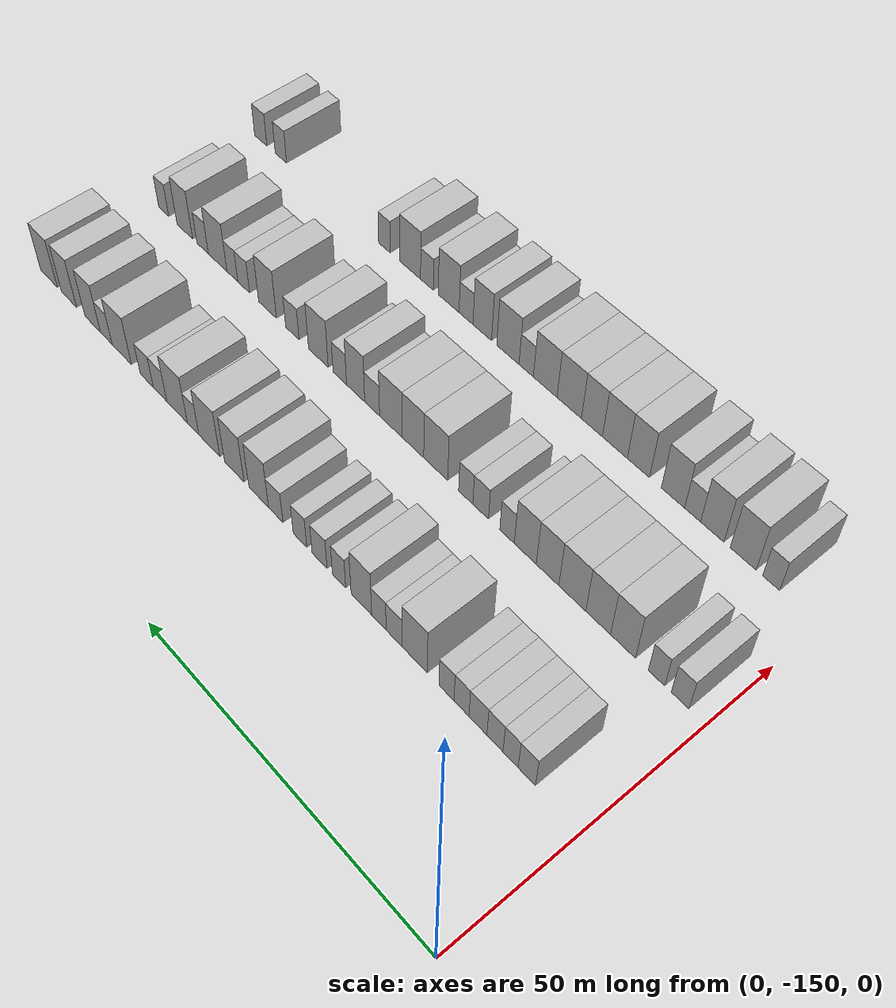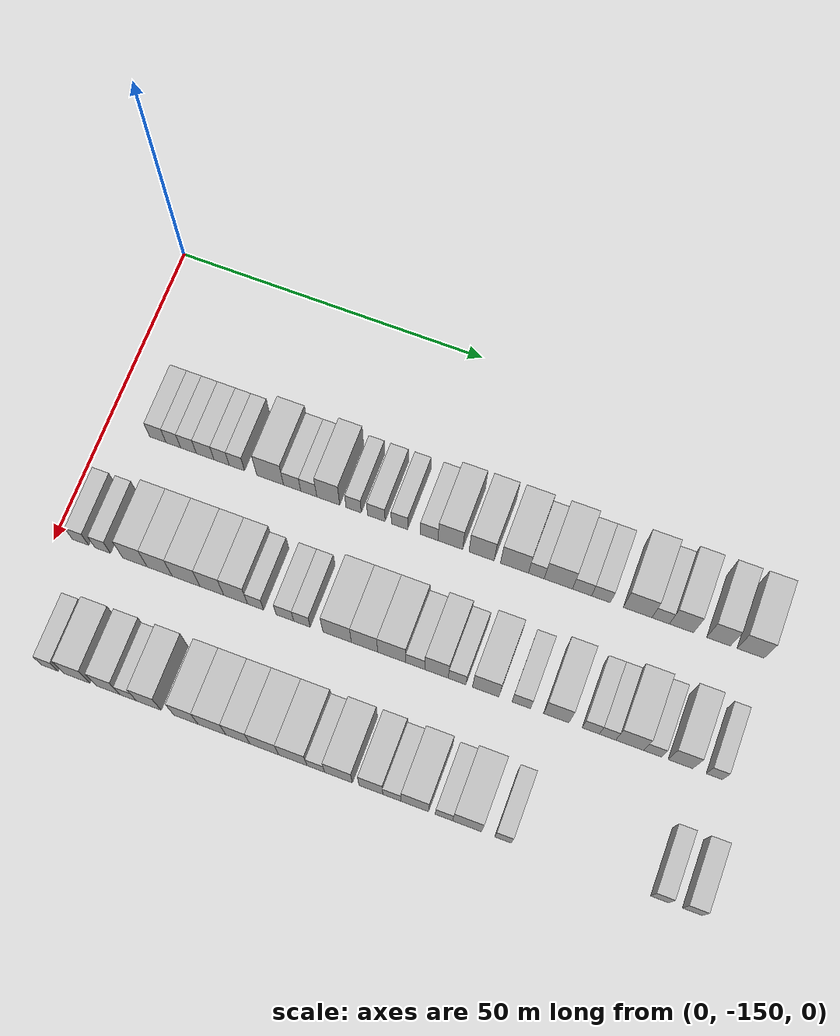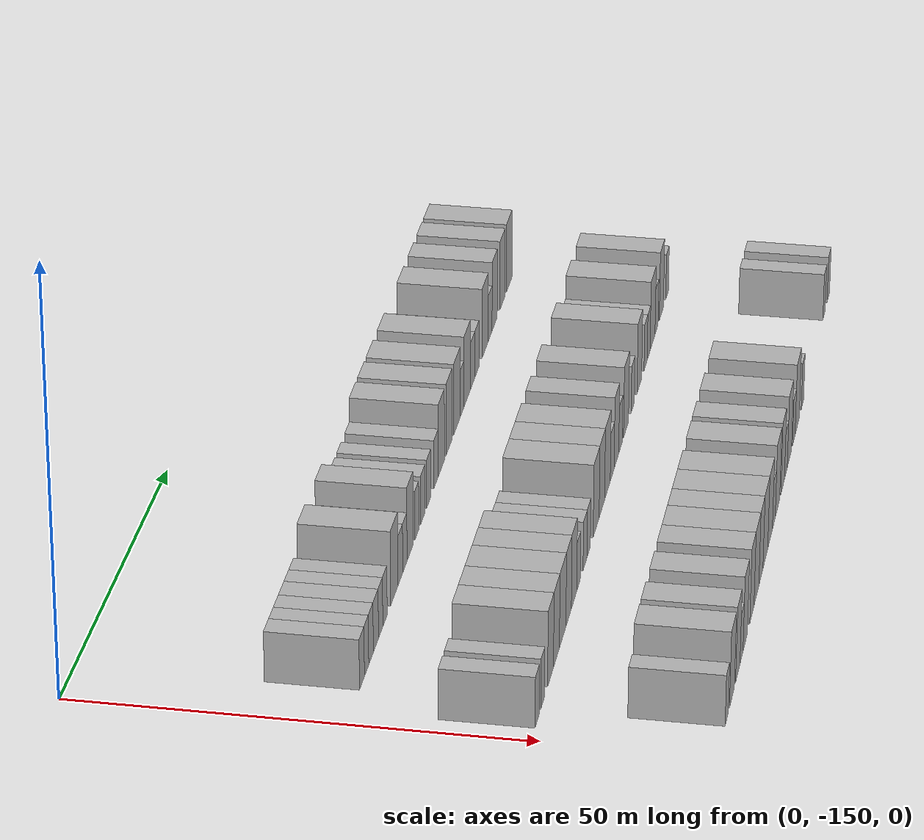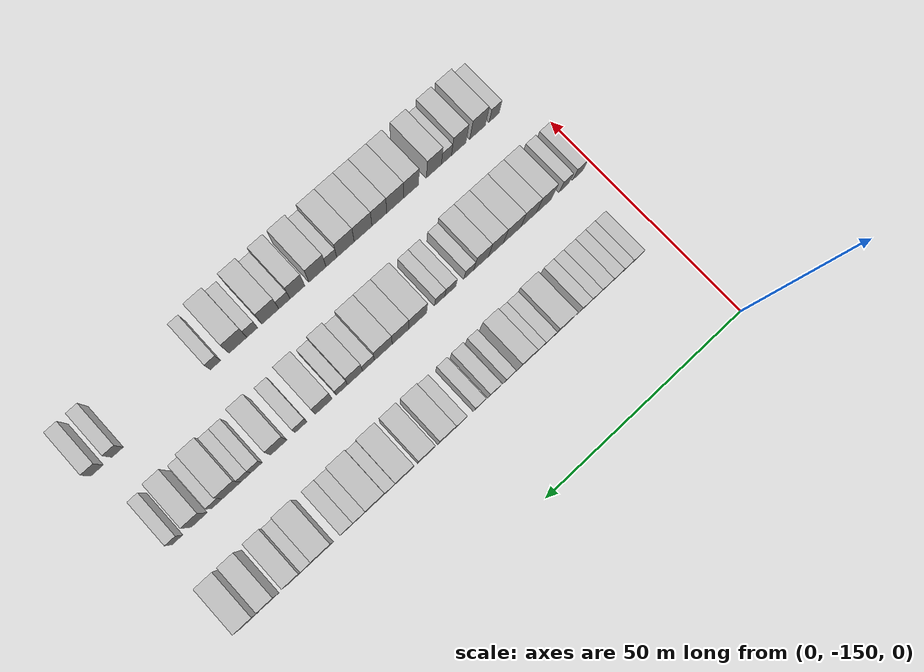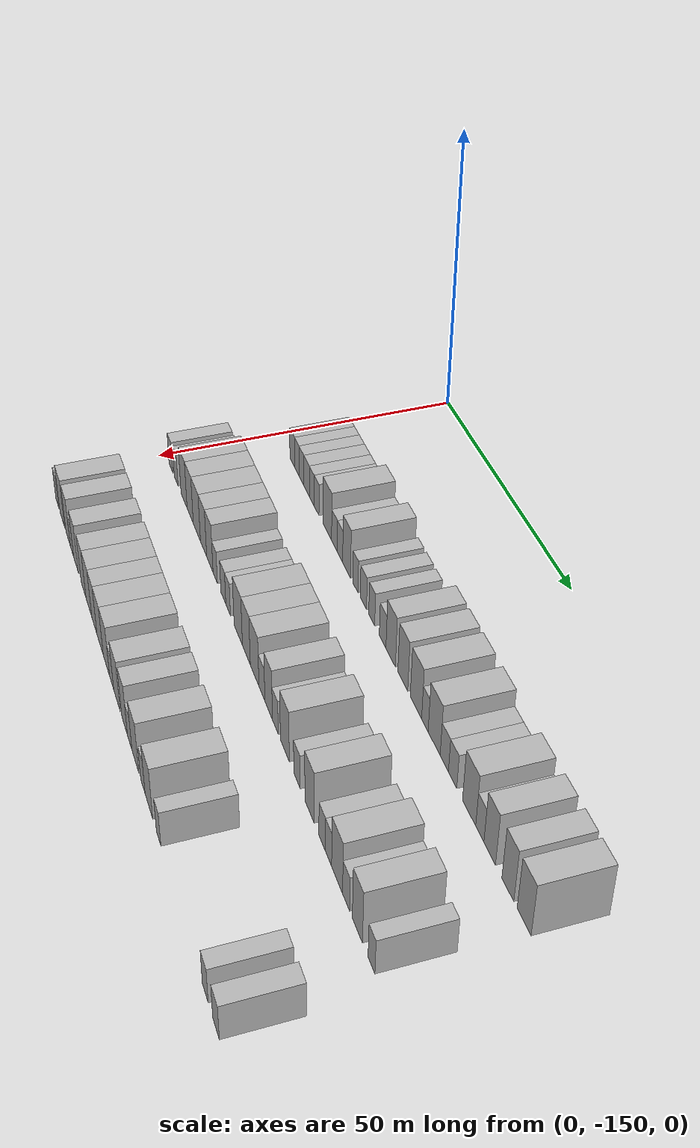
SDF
<sdf version="1.6">
 <world name="default">
  <model name="building_25">
   <static>1</static>
   <pose>25.0000 -141.7247 0 0.000000 0.000000 0.000000</pose>
   <link name="link">
    <pose>0 0 3.00 0 0 0</pose>
    <collision name="collision"><geometry><box><size>10.0000 2.7232 6.0000</size></box></geometry></collision>
    <visual name="visual">
     <cast_shadows>0</cast_shadows>
     <geometry><box><size>10.0000 2.7232 6.0000</size></box></geometry>
     <material>
      <script>
       <uri>model://HANNAS_wall/materials/scripts</uri>
       <uri>model://HANNAS_wall/materials/textures</uri>
       <name>vrc/HANNAS_wall</name>
      </script>
     </material>
    </visual>
   </link>
  </model>
  <model name="building_26">
   <static>1</static>
   <pose>25.0000 -139.1629 0 0.000000 0.000000 0.000000</pose>
   <link name="link">
    <pose>0 0 3.00 0 0 0</pose>
    <collision name="collision"><geometry><box><size>10.0000 2.4004 6.0000</size></box></geometry></collision>
    <visual name="visual">
     <cast_shadows>0</cast_shadows>
     <geometry><box><size>10.0000 2.4004 6.0000</size></box></geometry>
     <material>
      <script>
       <uri>model://HANNAS_wall/materials/scripts</uri>
       <uri>model://HANNAS_wall/materials/textures</uri>
       <name>vrc/HANNAS_wall</name>
      </script>
     </material>
    </visual>
   </link>
  </model>
  <model name="building_27">
   <static>1</static>
   <pose>25.0000 -136.6651 0 0.000000 0.000000 0.000000</pose>
   <link name="link">
    <pose>0 0 3.00 0 0 0</pose>
    <collision name="collision"><geometry><box><size>10.0000 2.5952 6.0000</size></box></geometry></collision>
    <visual name="visual">
     <cast_shadows>0</cast_shadows>
     <geometry><box><size>10.0000 2.5952 6.0000</size></box></geometry>
     <material>
      <script>
       <uri>model://HANNAS_wall/materials/scripts</uri>
       <uri>model://HANNAS_wall/materials/textures</uri>
       <name>vrc/HANNAS_wall</name>
      </script>
     </material>
    </visual>
   </link>
  </model>
  <model name="building_28">
   <static>1</static>
   <pose>25.0000 -133.9143 0 0.000000 0.000000 0.000000</pose>
   <link name="link">
    <pose>0 0 3.00 0 0 0</pose>
    <collision name="collision"><geometry><box><size>10.0000 2.9065 6.0000</size></box></geometry></collision>
    <visual name="visual">
     <cast_shadows>0</cast_shadows>
     <geometry><box><size>10.0000 2.9065 6.0000</size></box></geometry>
     <material>
      <script>
       <uri>model://HANNAS_wall/materials/scripts</uri>
       <uri>model://HANNAS_wall/materials/textures</uri>
       <name>vrc/HANNAS_wall</name>
      </script>
     </material>
    </visual>
   </link>
  </model>
  <model name="building_29">
   <static>1</static>
   <pose>25.0000 -131.2215 0 0.000000 0.000000 0.000000</pose>
   <link name="link">
    <pose>0 0 3.00 0 0 0</pose>
    <collision name="collision"><geometry><box><size>10.0000 2.4790 6.0000</size></box></geometry></collision>
    <visual name="visual">
     <cast_shadows>0</cast_shadows>
     <geometry><box><size>10.0000 2.4790 6.0000</size></box></geometry>
     <material>
      <script>
       <uri>model://HANNAS_wall/materials/scripts</uri>
       <uri>model://HANNAS_wall/materials/textures</uri>
       <name>vrc/HANNAS_wall</name>
      </script>
     </material>
    </visual>
   </link>
  </model>
  <model name="building_30">
   <static>1</static>
   <pose>25.0000 -128.7244 0 0.000000 0.000000 0.000000</pose>
   <link name="link">
    <pose>0 0 3.00 0 0 0</pose>
    <collision name="collision"><geometry><box><size>10.0000 2.5151 6.0000</size></box></geometry></collision>
    <visual name="visual">
     <cast_shadows>0</cast_shadows>
     <geometry><box><size>10.0000 2.5151 6.0000</size></box></geometry>
     <material>
      <script>
       <uri>model://HANNAS_wall/materials/scripts</uri>
       <uri>model://HANNAS_wall/materials/textures</uri>
       <name>vrc/HANNAS_wall</name>
      </script>
     </material>
    </visual>
   </link>
  </model>
  <model name="building_31">
   <static>1</static>
   <pose>25.0000 -123.2932 0 0.000000 0.000000 0.000000</pose>
   <link name="link">
    <pose>0 0 4.50 0 0 0</pose>
    <collision name="collision"><geometry><box><size>10.0000 4.3473 9.0000</size></box></geometry></collision>
    <visual name="visual">
     <cast_shadows>0</cast_shadows>
     <geometry><box><size>10.0000 4.3473 9.0000</size></box></geometry>
     <material>
      <script>
       <uri>model://HANNAS_wall/materials/scripts</uri>
       <uri>model://HANNAS_wall/materials/textures</uri>
       <name>vrc/HANNAS_wall</name>
      </script>
     </material>
    </visual>
   </link>
  </model>
  <model name="building_32">
   <static>1</static>
   <pose>25.0000 -119.7225 0 0.000000 0.000000 0.000000</pose>
   <link name="link">
    <pose>0 0 3.00 0 0 0</pose>
    <collision name="collision"><geometry><box><size>10.0000 2.7942 6.0000</size></box></geometry></collision>
    <visual name="visual">
     <cast_shadows>0</cast_shadows>
     <geometry><box><size>10.0000 2.7942 6.0000</size></box></geometry>
     <material>
      <script>
       <uri>model://HANNAS_wall/materials/scripts</uri>
       <uri>model://HANNAS_wall/materials/textures</uri>
       <name>vrc/HANNAS_wall</name>
      </script>
     </material>
    </visual>
   </link>
  </model>
  <model name="building_33">
   <static>1</static>
   <pose>25.0000 -117.0297 0 0.000000 0.000000 0.000000</pose>
   <link name="link">
    <pose>0 0 3.00 0 0 0</pose>
    <collision name="collision"><geometry><box><size>10.0000 2.5913 6.0000</size></box></geometry></collision>
    <visual name="visual">
     <cast_shadows>0</cast_shadows>
     <geometry><box><size>10.0000 2.5913 6.0000</size></box></geometry>
     <material>
      <script>
       <uri>model://HANNAS_wall/materials/scripts</uri>
       <uri>model://HANNAS_wall/materials/textures</uri>
       <name>vrc/HANNAS_wall</name>
      </script>
     </material>
    </visual>
   </link>
  </model>
  <model name="building_34">
   <static>1</static>
   <pose>25.0000 -113.8759 0 0.000000 0.000000 0.000000</pose>
   <link name="link">
    <pose>0 0 4.50 0 0 0</pose>
    <collision name="collision"><geometry><box><size>10.0000 3.7162 9.0000</size></box></geometry></collision>
    <visual name="visual">
     <cast_shadows>0</cast_shadows>
     <geometry><box><size>10.0000 3.7162 9.0000</size></box></geometry>
     <material>
      <script>
       <uri>model://HANNAS_wall/materials/scripts</uri>
       <uri>model://HANNAS_wall/materials/textures</uri>
       <name>vrc/HANNAS_wall</name>
      </script>
     </material>
    </visual>
   </link>
  </model>
  <model name="building_35">
   <static>1</static>
   <pose>25.0000 -109.7910 0 0.000000 0.000000 0.000000</pose>
   <link name="link">
    <pose>0 0 3.00 0 0 0</pose>
    <collision name="collision"><geometry><box><size>10.0000 2.4537 6.0000</size></box></geometry></collision>
    <visual name="visual">
     <cast_shadows>0</cast_shadows>
     <geometry><box><size>10.0000 2.4537 6.0000</size></box></geometry>
     <material>
      <script>
       <uri>model://HANNAS_wall/materials/scripts</uri>
       <uri>model://HANNAS_wall/materials/textures</uri>
       <name>vrc/HANNAS_wall</name>
      </script>
     </material>
    </visual>
   </link>
  </model>
  <model name="building_36">
   <static>1</static>
   <pose>25.0000 -106.1518 0 0.000000 0.000000 0.000000</pose>
   <link name="link">
    <pose>0 0 3.00 0 0 0</pose>
    <collision name="collision"><geometry><box><size>10.0000 2.8247 6.0000</size></box></geometry></collision>
    <visual name="visual">
     <cast_shadows>0</cast_shadows>
     <geometry><box><size>10.0000 2.8247 6.0000</size></box></geometry>
     <material>
      <script>
       <uri>model://HANNAS_wall/materials/scripts</uri>
       <uri>model://HANNAS_wall/materials/textures</uri>
       <name>vrc/HANNAS_wall</name>
      </script>
     </material>
    </visual>
   </link>
  </model>
  <model name="building_37">
   <static>1</static>
   <pose>25.0000 -102.4365 0 0.000000 0.000000 0.000000</pose>
   <link name="link">
    <pose>0 0 3.00 0 0 0</pose>
    <collision name="collision"><geometry><box><size>10.0000 2.6058 6.0000</size></box></geometry></collision>
    <visual name="visual">
     <cast_shadows>0</cast_shadows>
     <geometry><box><size>10.0000 2.6058 6.0000</size></box></geometry>
     <material>
      <script>
       <uri>model://HANNAS_wall/materials/scripts</uri>
       <uri>model://HANNAS_wall/materials/textures</uri>
       <name>vrc/HANNAS_wall</name>
      </script>
     </material>
    </visual>
   </link>
  </model>
  <model name="building_38">
   <static>1</static>
   <pose>25.0000 -97.7181 0 0.000000 0.000000 0.000000</pose>
   <link name="link">
    <pose>0 0 3.00 0 0 0</pose>
    <collision name="collision"><geometry><box><size>10.0000 2.8311 6.0000</size></box></geometry></collision>
    <visual name="visual">
     <cast_shadows>0</cast_shadows>
     <geometry><box><size>10.0000 2.8311 6.0000</size></box></geometry>
     <material>
      <script>
       <uri>model://HANNAS_wall/materials/scripts</uri>
       <uri>model://HANNAS_wall/materials/textures</uri>
       <name>vrc/HANNAS_wall</name>
      </script>
     </material>
    </visual>
   </link>
  </model>
  <model name="building_39">
   <static>1</static>
   <pose>25.0000 -94.3414 0 0.000000 0.000000 0.000000</pose>
   <link name="link">
    <pose>0 0 4.50 0 0 0</pose>
    <collision name="collision"><geometry><box><size>10.0000 3.9223 9.0000</size></box></geometry></collision>
    <visual name="visual">
     <cast_shadows>0</cast_shadows>
     <geometry><box><size>10.0000 3.9223 9.0000</size></box></geometry>
     <material>
      <script>
       <uri>model://HANNAS_wall/materials/scripts</uri>
       <uri>model://HANNAS_wall/materials/textures</uri>
       <name>vrc/HANNAS_wall</name>
      </script>
     </material>
    </visual>
   </link>
  </model>
  <model name="building_40">
   <static>1</static>
   <pose>25.0000 -89.3927 0 0.000000 0.000000 0.000000</pose>
   <link name="link">
    <pose>0 0 4.50 0 0 0</pose>
    <collision name="collision"><geometry><box><size>10.0000 3.9752 9.0000</size></box></geometry></collision>
    <visual name="visual">
     <cast_shadows>0</cast_shadows>
     <geometry><box><size>10.0000 3.9752 9.0000</size></box></geometry>
     <material>
      <script>
       <uri>model://HANNAS_wall/materials/scripts</uri>
       <uri>model://HANNAS_wall/materials/textures</uri>
       <name>vrc/HANNAS_wall</name>
      </script>
     </material>
    </visual>
   </link>
  </model>
  <model name="building_41">
   <static>1</static>
   <pose>25.0000 -84.1978 0 0.000000 0.000000 0.000000</pose>
   <link name="link">
    <pose>0 0 4.50 0 0 0</pose>
    <collision name="collision"><geometry><box><size>10.0000 4.4145 9.0000</size></box></geometry></collision>
    <visual name="visual">
     <cast_shadows>0</cast_shadows>
     <geometry><box><size>10.0000 4.4145 9.0000</size></box></geometry>
     <material>
      <script>
       <uri>model://HANNAS_wall/materials/scripts</uri>
       <uri>model://HANNAS_wall/materials/textures</uri>
       <name>vrc/HANNAS_wall</name>
      </script>
     </material>
    </visual>
   </link>
  </model>
  <model name="building_42">
   <static>1</static>
   <pose>25.0000 -80.7613 0 0.000000 0.000000 0.000000</pose>
   <link name="link">
    <pose>0 0 3.00 0 0 0</pose>
    <collision name="collision"><geometry><box><size>10.0000 2.4583 6.0000</size></box></geometry></collision>
    <visual name="visual">
     <cast_shadows>0</cast_shadows>
     <geometry><box><size>10.0000 2.4583 6.0000</size></box></geometry>
     <material>
      <script>
       <uri>model://HANNAS_wall/materials/scripts</uri>
       <uri>model://HANNAS_wall/materials/textures</uri>
       <name>vrc/HANNAS_wall</name>
      </script>
     </material>
    </visual>
   </link>
  </model>
  <model name="building_43">
   <static>1</static>
   <pose>25.0000 -77.3106 0 0.000000 0.000000 0.000000</pose>
   <link name="link">
    <pose>0 0 4.50 0 0 0</pose>
    <collision name="collision"><geometry><box><size>10.0000 4.4431 9.0000</size></box></geometry></collision>
    <visual name="visual">
     <cast_shadows>0</cast_shadows>
     <geometry><box><size>10.0000 4.4431 9.0000</size></box></geometry>
     <material>
      <script>
       <uri>model://HANNAS_wall/materials/scripts</uri>
       <uri>model://HANNAS_wall/materials/textures</uri>
       <name>vrc/HANNAS_wall</name>
      </script>
     </material>
    </visual>
   </link>
  </model>
  <model name="building_44">
   <static>1</static>
   <pose>25.0000 -73.6004 0 0.000000 0.000000 0.000000</pose>
   <link name="link">
    <pose>0 0 3.00 0 0 0</pose>
    <collision name="collision"><geometry><box><size>10.0000 2.9773 6.0000</size></box></geometry></collision>
    <visual name="visual">
     <cast_shadows>0</cast_shadows>
     <geometry><box><size>10.0000 2.9773 6.0000</size></box></geometry>
     <material>
      <script>
       <uri>model://HANNAS_wall/materials/scripts</uri>
       <uri>model://HANNAS_wall/materials/textures</uri>
       <name>vrc/HANNAS_wall</name>
      </script>
     </material>
    </visual>
   </link>
  </model>
  <model name="building_45">
   <static>1</static>
   <pose>25.0000 -70.6424 0 0.000000 0.000000 0.000000</pose>
   <link name="link">
    <pose>0 0 3.00 0 0 0</pose>
    <collision name="collision"><geometry><box><size>10.0000 2.9387 6.0000</size></box></geometry></collision>
    <visual name="visual">
     <cast_shadows>0</cast_shadows>
     <geometry><box><size>10.0000 2.9387 6.0000</size></box></geometry>
     <material>
      <script>
       <uri>model://HANNAS_wall/materials/scripts</uri>
       <uri>model://HANNAS_wall/materials/textures</uri>
       <name>vrc/HANNAS_wall</name>
      </script>
     </material>
    </visual>
   </link>
  </model>
  <model name="building_46">
   <static>1</static>
   <pose>25.0000 -64.9526 0 0.000000 0.000000 0.000000</pose>
   <link name="link">
    <pose>0 0 4.50 0 0 0</pose>
    <collision name="collision"><geometry><box><size>10.0000 4.4409 9.0000</size></box></geometry></collision>
    <visual name="visual">
     <cast_shadows>0</cast_shadows>
     <geometry><box><size>10.0000 4.4409 9.0000</size></box></geometry>
     <material>
      <script>
       <uri>model://HANNAS_wall/materials/scripts</uri>
       <uri>model://HANNAS_wall/materials/textures</uri>
       <name>vrc/HANNAS_wall</name>
      </script>
     </material>
    </visual>
   </link>
  </model>
  <model name="building_47">
   <static>1</static>
   <pose>25.0000 -61.3813 0 0.000000 0.000000 0.000000</pose>
   <link name="link">
    <pose>0 0 3.00 0 0 0</pose>
    <collision name="collision"><geometry><box><size>10.0000 2.7017 6.0000</size></box></geometry></collision>
    <visual name="visual">
     <cast_shadows>0</cast_shadows>
     <geometry><box><size>10.0000 2.7017 6.0000</size></box></geometry>
     <material>
      <script>
       <uri>model://HANNAS_wall/materials/scripts</uri>
       <uri>model://HANNAS_wall/materials/textures</uri>
       <name>vrc/HANNAS_wall</name>
      </script>
     </material>
    </visual>
   </link>
  </model>
  <model name="building_48">
   <static>1</static>
   <pose>25.0000 -58.1731 0 0.000000 0.000000 0.000000</pose>
   <link name="link">
    <pose>0 0 4.50 0 0 0</pose>
    <collision name="collision"><geometry><box><size>10.0000 3.7148 9.0000</size></box></geometry></collision>
    <visual name="visual">
     <cast_shadows>0</cast_shadows>
     <geometry><box><size>10.0000 3.7148 9.0000</size></box></geometry>
     <material>
      <script>
       <uri>model://HANNAS_wall/materials/scripts</uri>
       <uri>model://HANNAS_wall/materials/textures</uri>
       <name>vrc/HANNAS_wall</name>
      </script>
     </material>
    </visual>
   </link>
  </model>
  <model name="building_49">
   <static>1</static>
   <pose>25.0000 -52.4821 0 0.000000 0.000000 0.000000</pose>
   <link name="link">
    <pose>0 0 4.50 0 0 0</pose>
    <collision name="collision"><geometry><box><size>10.0000 3.6671 9.0000</size></box></geometry></collision>
    <visual name="visual">
     <cast_shadows>0</cast_shadows>
     <geometry><box><size>10.0000 3.6671 9.0000</size></box></geometry>
     <material>
      <script>
       <uri>model://HANNAS_wall/materials/scripts</uri>
       <uri>model://HANNAS_wall/materials/textures</uri>
       <name>vrc/HANNAS_wall</name>
      </script>
     </material>
    </visual>
   </link>
  </model>
  <model name="building_50">
   <static>1</static>
   <pose>25.0000 -47.5827 0 0.000000 0.000000 0.000000</pose>
   <link name="link">
    <pose>0 0 4.50 0 0 0</pose>
    <collision name="collision"><geometry><box><size>10.0000 4.1316 9.0000</size></box></geometry></collision>
    <visual name="visual">
     <cast_shadows>0</cast_shadows>
     <geometry><box><size>10.0000 4.1316 9.0000</size></box></geometry>
     <material>
      <script>
       <uri>model://HANNAS_wall/materials/scripts</uri>
       <uri>model://HANNAS_wall/materials/textures</uri>
       <name>vrc/HANNAS_wall</name>
      </script>
     </material>
    </visual>
   </link>
  </model>
  <model name="building_140">
   <static>1</static>
   <pose>44.0000 -146.1285 0 0.000000 0.000000 0.000000</pose>
   <link name="link">
    <pose>0 0 3.00 0 0 0</pose>
    <collision name="collision"><geometry><box><size>10.0000 2.6749 6.0000</size></box></geometry></collision>
    <visual name="visual">
     <cast_shadows>0</cast_shadows>
     <geometry><box><size>10.0000 2.6749 6.0000</size></box></geometry>
     <material>
      <script>
       <uri>model://HANNAS_wall/materials/scripts</uri>
       <uri>model://HANNAS_wall/materials/textures</uri>
       <name>vrc/HANNAS_wall</name>
      </script>
     </material>
    </visual>
   </link>
  </model>
  <model name="building_141">
   <static>1</static>
   <pose>44.0000 -142.5231 0 0.000000 0.000000 0.000000</pose>
   <link name="link">
    <pose>0 0 3.00 0 0 0</pose>
    <collision name="collision"><geometry><box><size>10.0000 2.5359 6.0000</size></box></geometry></collision>
    <visual name="visual">
     <cast_shadows>0</cast_shadows>
     <geometry><box><size>10.0000 2.5359 6.0000</size></box></geometry>
     <material>
      <script>
       <uri>model://HANNAS_wall/materials/scripts</uri>
       <uri>model://HANNAS_wall/materials/textures</uri>
       <name>vrc/HANNAS_wall</name>
      </script>
     </material>
    </visual>
   </link>
  </model>
  <model name="building_142">
   <static>1</static>
   <pose>44.0000 -137.2744 0 0.000000 0.000000 0.000000</pose>
   <link name="link">
    <pose>0 0 4.50 0 0 0</pose>
    <collision name="collision"><geometry><box><size>10.0000 3.9614 9.0000</size></box></geometry></collision>
    <visual name="visual">
     <cast_shadows>0</cast_shadows>
     <geometry><box><size>10.0000 3.9614 9.0000</size></box></geometry>
     <material>
      <script>
       <uri>model://HANNAS_wall/materials/scripts</uri>
       <uri>model://HANNAS_wall/materials/textures</uri>
       <name>vrc/HANNAS_wall</name>
      </script>
     </material>
    </visual>
   </link>
  </model>
  <model name="building_143">
   <static>1</static>
   <pose>44.0000 -133.2879 0 0.000000 0.000000 0.000000</pose>
   <link name="link">
    <pose>0 0 4.50 0 0 0</pose>
    <collision name="collision"><geometry><box><size>10.0000 4.0117 9.0000</size></box></geometry></collision>
    <visual name="visual">
     <cast_shadows>0</cast_shadows>
     <geometry><box><size>10.0000 4.0117 9.0000</size></box></geometry>
     <material>
      <script>
       <uri>model://HANNAS_wall/materials/scripts</uri>
       <uri>model://HANNAS_wall/materials/textures</uri>
       <name>vrc/HANNAS_wall</name>
      </script>
     </material>
    </visual>
   </link>
  </model>
  <model name="building_144">
   <static>1</static>
   <pose>44.0000 -129.0431 0 0.000000 0.000000 0.000000</pose>
   <link name="link">
    <pose>0 0 4.50 0 0 0</pose>
    <collision name="collision"><geometry><box><size>10.0000 4.4779 9.0000</size></box></geometry></collision>
    <visual name="visual">
     <cast_shadows>0</cast_shadows>
     <geometry><box><size>10.0000 4.4779 9.0000</size></box></geometry>
     <material>
      <script>
       <uri>model://HANNAS_wall/materials/scripts</uri>
       <uri>model://HANNAS_wall/materials/textures</uri>
       <name>vrc/HANNAS_wall</name>
      </script>
     </material>
    </visual>
   </link>
  </model>
  <model name="building_145">
   <static>1</static>
   <pose>44.0000 -124.8948 0 0.000000 0.000000 0.000000</pose>
   <link name="link">
    <pose>0 0 4.50 0 0 0</pose>
    <collision name="collision"><geometry><box><size>10.0000 3.8187 9.0000</size></box></geometry></collision>
    <visual name="visual">
     <cast_shadows>0</cast_shadows>
     <geometry><box><size>10.0000 3.8187 9.0000</size></box></geometry>
     <material>
      <script>
       <uri>model://HANNAS_wall/materials/scripts</uri>
       <uri>model://HANNAS_wall/materials/textures</uri>
       <name>vrc/HANNAS_wall</name>
      </script>
     </material>
    </visual>
   </link>
  </model>
  <model name="building_146">
   <static>1</static>
   <pose>44.0000 -121.0950 0 0.000000 0.000000 0.000000</pose>
   <link name="link">
    <pose>0 0 4.50 0 0 0</pose>
    <collision name="collision"><geometry><box><size>10.0000 3.7809 9.0000</size></box></geometry></collision>
    <visual name="visual">
     <cast_shadows>0</cast_shadows>
     <geometry><box><size>10.0000 3.7809 9.0000</size></box></geometry>
     <material>
      <script>
       <uri>model://HANNAS_wall/materials/scripts</uri>
       <uri>model://HANNAS_wall/materials/textures</uri>
       <name>vrc/HANNAS_wall</name>
      </script>
     </material>
    </visual>
   </link>
  </model>
  <model name="building_147">
   <static>1</static>
   <pose>44.0000 -117.9331 0 0.000000 0.000000 0.000000</pose>
   <link name="link">
    <pose>0 0 3.00 0 0 0</pose>
    <collision name="collision"><geometry><box><size>10.0000 2.5430 6.0000</size></box></geometry></collision>
    <visual name="visual">
     <cast_shadows>0</cast_shadows>
     <geometry><box><size>10.0000 2.5430 6.0000</size></box></geometry>
     <material>
      <script>
       <uri>model://HANNAS_wall/materials/scripts</uri>
       <uri>model://HANNAS_wall/materials/textures</uri>
       <name>vrc/HANNAS_wall</name>
      </script>
     </material>
    </visual>
   </link>
  </model>
  <model name="building_148">
   <static>1</static>
   <pose>44.0000 -113.2667 0 0.000000 0.000000 0.000000</pose>
   <link name="link">
    <pose>0 0 3.00 0 0 0</pose>
    <collision name="collision"><geometry><box><size>10.0000 2.7897 6.0000</size></box></geometry></collision>
    <visual name="visual">
     <cast_shadows>0</cast_shadows>
     <geometry><box><size>10.0000 2.7897 6.0000</size></box></geometry>
     <material>
      <script>
       <uri>model://HANNAS_wall/materials/scripts</uri>
       <uri>model://HANNAS_wall/materials/textures</uri>
       <name>vrc/HANNAS_wall</name>
      </script>
     </material>
    </visual>
   </link>
  </model>
  <model name="building_149">
   <static>1</static>
   <pose>44.0000 -110.5725 0 0.000000 0.000000 0.000000</pose>
   <link name="link">
    <pose>0 0 3.00 0 0 0</pose>
    <collision name="collision"><geometry><box><size>10.0000 2.5987 6.0000</size></box></geometry></collision>
    <visual name="visual">
     <cast_shadows>0</cast_shadows>
     <geometry><box><size>10.0000 2.5987 6.0000</size></box></geometry>
     <material>
      <script>
       <uri>model://HANNAS_wall/materials/scripts</uri>
       <uri>model://HANNAS_wall/materials/textures</uri>
       <name>vrc/HANNAS_wall</name>
      </script>
     </material>
    </visual>
   </link>
  </model>
  <model name="building_150">
   <static>1</static>
   <pose>44.0000 -105.0378 0 0.000000 0.000000 0.000000</pose>
   <link name="link">
    <pose>0 0 4.50 0 0 0</pose>
    <collision name="collision"><geometry><box><size>10.0000 4.4707 9.0000</size></box></geometry></collision>
    <visual name="visual">
     <cast_shadows>0</cast_shadows>
     <geometry><box><size>10.0000 4.4707 9.0000</size></box></geometry>
     <material>
      <script>
       <uri>model://HANNAS_wall/materials/scripts</uri>
       <uri>model://HANNAS_wall/materials/textures</uri>
       <name>vrc/HANNAS_wall</name>
      </script>
     </material>
    </visual>
   </link>
  </model>
  <model name="building_151">
   <static>1</static>
   <pose>44.0000 -100.7457 0 0.000000 0.000000 0.000000</pose>
   <link name="link">
    <pose>0 0 4.50 0 0 0</pose>
    <collision name="collision"><geometry><box><size>10.0000 4.1135 9.0000</size></box></geometry></collision>
    <visual name="visual">
     <cast_shadows>0</cast_shadows>
     <geometry><box><size>10.0000 4.1135 9.0000</size></box></geometry>
     <material>
      <script>
       <uri>model://HANNAS_wall/materials/scripts</uri>
       <uri>model://HANNAS_wall/materials/textures</uri>
       <name>vrc/HANNAS_wall</name>
      </script>
     </material>
    </visual>
   </link>
  </model>
  <model name="building_152">
   <static>1</static>
   <pose>44.0000 -96.5007 0 0.000000 0.000000 0.000000</pose>
   <link name="link">
    <pose>0 0 4.50 0 0 0</pose>
    <collision name="collision"><geometry><box><size>10.0000 4.3764 9.0000</size></box></geometry></collision>
    <visual name="visual">
     <cast_shadows>0</cast_shadows>
     <geometry><box><size>10.0000 4.3764 9.0000</size></box></geometry>
     <material>
      <script>
       <uri>model://HANNAS_wall/materials/scripts</uri>
       <uri>model://HANNAS_wall/materials/textures</uri>
       <name>vrc/HANNAS_wall</name>
      </script>
     </material>
    </visual>
   </link>
  </model>
  <model name="building_153">
   <static>1</static>
   <pose>44.0000 -92.8399 0 0.000000 0.000000 0.000000</pose>
   <link name="link">
    <pose>0 0 3.00 0 0 0</pose>
    <collision name="collision"><geometry><box><size>10.0000 2.9452 6.0000</size></box></geometry></collision>
    <visual name="visual">
     <cast_shadows>0</cast_shadows>
     <geometry><box><size>10.0000 2.9452 6.0000</size></box></geometry>
     <material>
      <script>
       <uri>model://HANNAS_wall/materials/scripts</uri>
       <uri>model://HANNAS_wall/materials/textures</uri>
       <name>vrc/HANNAS_wall</name>
      </script>
     </material>
    </visual>
   </link>
  </model>
  <model name="building_154">
   <static>1</static>
   <pose>44.0000 -89.5427 0 0.000000 0.000000 0.000000</pose>
   <link name="link">
    <pose>0 0 4.50 0 0 0</pose>
    <collision name="collision"><geometry><box><size>10.0000 3.6491 9.0000</size></box></geometry></collision>
    <visual name="visual">
     <cast_shadows>0</cast_shadows>
     <geometry><box><size>10.0000 3.6491 9.0000</size></box></geometry>
     <material>
      <script>
       <uri>model://HANNAS_wall/materials/scripts</uri>
       <uri>model://HANNAS_wall/materials/textures</uri>
       <name>vrc/HANNAS_wall</name>
      </script>
     </material>
    </visual>
   </link>
  </model>
  <model name="building_155">
   <static>1</static>
   <pose>44.0000 -86.3446 0 0.000000 0.000000 0.000000</pose>
   <link name="link">
    <pose>0 0 3.00 0 0 0</pose>
    <collision name="collision"><geometry><box><size>10.0000 2.7471 6.0000</size></box></geometry></collision>
    <visual name="visual">
     <cast_shadows>0</cast_shadows>
     <geometry><box><size>10.0000 2.7471 6.0000</size></box></geometry>
     <material>
      <script>
       <uri>model://HANNAS_wall/materials/scripts</uri>
       <uri>model://HANNAS_wall/materials/textures</uri>
       <name>vrc/HANNAS_wall</name>
      </script>
     </material>
    </visual>
   </link>
  </model>
  <model name="building_156">
   <static>1</static>
   <pose>44.0000 -81.9277 0 0.000000 0.000000 0.000000</pose>
   <link name="link">
    <pose>0 0 4.50 0 0 0</pose>
    <collision name="collision"><geometry><box><size>10.0000 4.0867 9.0000</size></box></geometry></collision>
    <visual name="visual">
     <cast_shadows>0</cast_shadows>
     <geometry><box><size>10.0000 4.0867 9.0000</size></box></geometry>
     <material>
      <script>
       <uri>model://HANNAS_wall/materials/scripts</uri>
       <uri>model://HANNAS_wall/materials/textures</uri>
       <name>vrc/HANNAS_wall</name>
      </script>
     </material>
    </visual>
   </link>
  </model>
  <model name="building_157">
   <static>1</static>
   <pose>44.0000 -76.4593 0 0.000000 0.000000 0.000000</pose>
   <link name="link">
    <pose>0 0 3.00 0 0 0</pose>
    <collision name="collision"><geometry><box><size>10.0000 2.8501 6.0000</size></box></geometry></collision>
    <visual name="visual">
     <cast_shadows>0</cast_shadows>
     <geometry><box><size>10.0000 2.8501 6.0000</size></box></geometry>
     <material>
      <script>
       <uri>model://HANNAS_wall/materials/scripts</uri>
       <uri>model://HANNAS_wall/materials/textures</uri>
       <name>vrc/HANNAS_wall</name>
      </script>
     </material>
    </visual>
   </link>
  </model>
  <model name="building_158">
   <static>1</static>
   <pose>44.0000 -71.0915 0 0.000000 0.000000 0.000000</pose>
   <link name="link">
    <pose>0 0 4.50 0 0 0</pose>
    <collision name="collision"><geometry><box><size>10.0000 3.8855 9.0000</size></box></geometry></collision>
    <visual name="visual">
     <cast_shadows>0</cast_shadows>
     <geometry><box><size>10.0000 3.8855 9.0000</size></box></geometry>
     <material>
      <script>
       <uri>model://HANNAS_wall/materials/scripts</uri>
       <uri>model://HANNAS_wall/materials/textures</uri>
       <name>vrc/HANNAS_wall</name>
      </script>
     </material>
    </visual>
   </link>
  </model>
  <model name="building_159">
   <static>1</static>
   <pose>44.0000 -65.8329 0 0.000000 0.000000 0.000000</pose>
   <link name="link">
    <pose>0 0 3.00 0 0 0</pose>
    <collision name="collision"><geometry><box><size>10.0000 2.6318 6.0000</size></box></geometry></collision>
    <visual name="visual">
     <cast_shadows>0</cast_shadows>
     <geometry><box><size>10.0000 2.6318 6.0000</size></box></geometry>
     <material>
      <script>
       <uri>model://HANNAS_wall/materials/scripts</uri>
       <uri>model://HANNAS_wall/materials/textures</uri>
       <name>vrc/HANNAS_wall</name>
      </script>
     </material>
    </visual>
   </link>
  </model>
  <model name="building_160">
   <static>1</static>
   <pose>44.0000 -63.2803 0 0.000000 0.000000 0.000000</pose>
   <link name="link">
    <pose>0 0 3.00 0 0 0</pose>
    <collision name="collision"><geometry><box><size>10.0000 2.4733 6.0000</size></box></geometry></collision>
    <visual name="visual">
     <cast_shadows>0</cast_shadows>
     <geometry><box><size>10.0000 2.4733 6.0000</size></box></geometry>
     <material>
      <script>
       <uri>model://HANNAS_wall/materials/scripts</uri>
       <uri>model://HANNAS_wall/materials/textures</uri>
       <name>vrc/HANNAS_wall</name>
      </script>
     </material>
    </visual>
   </link>
  </model>
  <model name="building_161">
   <static>1</static>
   <pose>44.0000 -59.9133 0 0.000000 0.000000 0.000000</pose>
   <link name="link">
    <pose>0 0 4.50 0 0 0</pose>
    <collision name="collision"><geometry><box><size>10.0000 4.2609 9.0000</size></box></geometry></collision>
    <visual name="visual">
     <cast_shadows>0</cast_shadows>
     <geometry><box><size>10.0000 4.2609 9.0000</size></box></geometry>
     <material>
      <script>
       <uri>model://HANNAS_wall/materials/scripts</uri>
       <uri>model://HANNAS_wall/materials/textures</uri>
       <name>vrc/HANNAS_wall</name>
      </script>
     </material>
    </visual>
   </link>
  </model>
  <model name="building_162">
   <static>1</static>
   <pose>44.0000 -56.4544 0 0.000000 0.000000 0.000000</pose>
   <link name="link">
    <pose>0 0 3.00 0 0 0</pose>
    <collision name="collision"><geometry><box><size>10.0000 2.6568 6.0000</size></box></geometry></collision>
    <visual name="visual">
     <cast_shadows>0</cast_shadows>
     <geometry><box><size>10.0000 2.6568 6.0000</size></box></geometry>
     <material>
      <script>
       <uri>model://HANNAS_wall/materials/scripts</uri>
       <uri>model://HANNAS_wall/materials/textures</uri>
       <name>vrc/HANNAS_wall</name>
      </script>
     </material>
    </visual>
   </link>
  </model>
  <model name="building_163">
   <static>1</static>
   <pose>44.0000 -52.2719 0 0.000000 0.000000 0.000000</pose>
   <link name="link">
    <pose>0 0 4.50 0 0 0</pose>
    <collision name="collision"><geometry><box><size>10.0000 3.7081 9.0000</size></box></geometry></collision>
    <visual name="visual">
     <cast_shadows>0</cast_shadows>
     <geometry><box><size>10.0000 3.7081 9.0000</size></box></geometry>
     <material>
      <script>
       <uri>model://HANNAS_wall/materials/scripts</uri>
       <uri>model://HANNAS_wall/materials/textures</uri>
       <name>vrc/HANNAS_wall</name>
      </script>
     </material>
    </visual>
   </link>
  </model>
  <model name="building_164">
   <static>1</static>
   <pose>44.0000 -47.2027 0 0.000000 0.000000 0.000000</pose>
   <link name="link">
    <pose>0 0 3.00 0 0 0</pose>
    <collision name="collision"><geometry><box><size>10.0000 2.4304 6.0000</size></box></geometry></collision>
    <visual name="visual">
     <cast_shadows>0</cast_shadows>
     <geometry><box><size>10.0000 2.4304 6.0000</size></box></geometry>
     <material>
      <script>
       <uri>model://HANNAS_wall/materials/scripts</uri>
       <uri>model://HANNAS_wall/materials/textures</uri>
       <name>vrc/HANNAS_wall</name>
      </script>
     </material>
    </visual>
   </link>
  </model>
  <model name="building_260">
   <static>1</static>
   <pose>63.0000 -142.5680 0 0.000000 0.000000 0.000000</pose>
   <link name="link">
    <pose>0 0 3.00 0 0 0</pose>
    <collision name="collision"><geometry><box><size>10.0000 2.6364 6.0000</size></box></geometry></collision>
    <visual name="visual">
     <cast_shadows>0</cast_shadows>
     <geometry><box><size>10.0000 2.6364 6.0000</size></box></geometry>
     <material>
      <script>
       <uri>model://HANNAS_wall/materials/scripts</uri>
       <uri>model://HANNAS_wall/materials/textures</uri>
       <name>vrc/HANNAS_wall</name>
      </script>
     </material>
    </visual>
   </link>
  </model>
  <model name="building_261">
   <static>1</static>
   <pose>63.0000 -138.2088 0 0.000000 0.000000 0.000000</pose>
   <link name="link">
    <pose>0 0 4.50 0 0 0</pose>
    <collision name="collision"><geometry><box><size>10.0000 4.0820 9.0000</size></box></geometry></collision>
    <visual name="visual">
     <cast_shadows>0</cast_shadows>
     <geometry><box><size>10.0000 4.0820 9.0000</size></box></geometry>
     <material>
      <script>
       <uri>model://HANNAS_wall/materials/scripts</uri>
       <uri>model://HANNAS_wall/materials/textures</uri>
       <name>vrc/HANNAS_wall</name>
      </script>
     </material>
    </visual>
   </link>
  </model>
  <model name="building_262">
   <static>1</static>
   <pose>63.0000 -133.2863 0 0.000000 0.000000 0.000000</pose>
   <link name="link">
    <pose>0 0 4.50 0 0 0</pose>
    <collision name="collision"><geometry><box><size>10.0000 3.7630 9.0000</size></box></geometry></collision>
    <visual name="visual">
     <cast_shadows>0</cast_shadows>
     <geometry><box><size>10.0000 3.7630 9.0000</size></box></geometry>
     <material>
      <script>
       <uri>model://HANNAS_wall/materials/scripts</uri>
       <uri>model://HANNAS_wall/materials/textures</uri>
       <name>vrc/HANNAS_wall</name>
      </script>
     </material>
    </visual>
   </link>
  </model>
  <model name="building_263">
   <static>1</static>
   <pose>63.0000 -130.0971 0 0.000000 0.000000 0.000000</pose>
   <link name="link">
    <pose>0 0 3.00 0 0 0</pose>
    <collision name="collision"><geometry><box><size>10.0000 2.6153 6.0000</size></box></geometry></collision>
    <visual name="visual">
     <cast_shadows>0</cast_shadows>
     <geometry><box><size>10.0000 2.6153 6.0000</size></box></geometry>
     <material>
      <script>
       <uri>model://HANNAS_wall/materials/scripts</uri>
       <uri>model://HANNAS_wall/materials/textures</uri>
       <name>vrc/HANNAS_wall</name>
      </script>
     </material>
    </visual>
   </link>
  </model>
  <model name="building_264">
   <static>1</static>
   <pose>63.0000 -126.8576 0 0.000000 0.000000 0.000000</pose>
   <link name="link">
    <pose>0 0 4.50 0 0 0</pose>
    <collision name="collision"><geometry><box><size>10.0000 3.8638 9.0000</size></box></geometry></collision>
    <visual name="visual">
     <cast_shadows>0</cast_shadows>
     <geometry><box><size>10.0000 3.8638 9.0000</size></box></geometry>
     <material>
      <script>
       <uri>model://HANNAS_wall/materials/scripts</uri>
       <uri>model://HANNAS_wall/materials/textures</uri>
       <name>vrc/HANNAS_wall</name>
      </script>
     </material>
    </visual>
   </link>
  </model>
  <model name="building_265">
   <static>1</static>
   <pose>63.0000 -121.0257 0 0.000000 0.000000 0.000000</pose>
   <link name="link">
    <pose>0 0 4.50 0 0 0</pose>
    <collision name="collision"><geometry><box><size>10.0000 3.7999 9.0000</size></box></geometry></collision>
    <visual name="visual">
     <cast_shadows>0</cast_shadows>
     <geometry><box><size>10.0000 3.7999 9.0000</size></box></geometry>
     <material>
      <script>
       <uri>model://HANNAS_wall/materials/scripts</uri>
       <uri>model://HANNAS_wall/materials/textures</uri>
       <name>vrc/HANNAS_wall</name>
      </script>
     </material>
    </visual>
   </link>
  </model>
  <model name="building_266">
   <static>1</static>
   <pose>63.0000 -116.9513 0 0.000000 0.000000 0.000000</pose>
   <link name="link">
    <pose>0 0 4.50 0 0 0</pose>
    <collision name="collision"><geometry><box><size>10.0000 4.3491 9.0000</size></box></geometry></collision>
    <visual name="visual">
     <cast_shadows>0</cast_shadows>
     <geometry><box><size>10.0000 4.3491 9.0000</size></box></geometry>
     <material>
      <script>
       <uri>model://HANNAS_wall/materials/scripts</uri>
       <uri>model://HANNAS_wall/materials/textures</uri>
       <name>vrc/HANNAS_wall</name>
      </script>
     </material>
    </visual>
   </link>
  </model>
  <model name="building_267">
   <static>1</static>
   <pose>63.0000 -112.9123 0 0.000000 0.000000 0.000000</pose>
   <link name="link">
    <pose>0 0 4.50 0 0 0</pose>
    <collision name="collision"><geometry><box><size>10.0000 3.7288 9.0000</size></box></geometry></collision>
    <visual name="visual">
     <cast_shadows>0</cast_shadows>
     <geometry><box><size>10.0000 3.7288 9.0000</size></box></geometry>
     <material>
      <script>
       <uri>model://HANNAS_wall/materials/scripts</uri>
       <uri>model://HANNAS_wall/materials/textures</uri>
       <name>vrc/HANNAS_wall</name>
      </script>
     </material>
    </visual>
   </link>
  </model>
  <model name="building_268">
   <static>1</static>
   <pose>63.0000 -108.8270 0 0.000000 0.000000 0.000000</pose>
   <link name="link">
    <pose>0 0 4.50 0 0 0</pose>
    <collision name="collision"><geometry><box><size>10.0000 4.4418 9.0000</size></box></geometry></collision>
    <visual name="visual">
     <cast_shadows>0</cast_shadows>
     <geometry><box><size>10.0000 4.4418 9.0000</size></box></geometry>
     <material>
      <script>
       <uri>model://HANNAS_wall/materials/scripts</uri>
       <uri>model://HANNAS_wall/materials/textures</uri>
       <name>vrc/HANNAS_wall</name>
      </script>
     </material>
    </visual>
   </link>
  </model>
  <model name="building_269">
   <static>1</static>
   <pose>63.0000 -104.4187 0 0.000000 0.000000 0.000000</pose>
   <link name="link">
    <pose>0 0 4.50 0 0 0</pose>
    <collision name="collision"><geometry><box><size>10.0000 4.3748 9.0000</size></box></geometry></collision>
    <visual name="visual">
     <cast_shadows>0</cast_shadows>
     <geometry><box><size>10.0000 4.3748 9.0000</size></box></geometry>
     <material>
      <script>
       <uri>model://HANNAS_wall/materials/scripts</uri>
       <uri>model://HANNAS_wall/materials/textures</uri>
       <name>vrc/HANNAS_wall</name>
      </script>
     </material>
    </visual>
   </link>
  </model>
  <model name="building_270">
   <static>1</static>
   <pose>63.0000 -100.8826 0 0.000000 0.000000 0.000000</pose>
   <link name="link">
    <pose>0 0 3.00 0 0 0</pose>
    <collision name="collision"><geometry><box><size>10.0000 2.6974 6.0000</size></box></geometry></collision>
    <visual name="visual">
     <cast_shadows>0</cast_shadows>
     <geometry><box><size>10.0000 2.6974 6.0000</size></box></geometry>
     <material>
      <script>
       <uri>model://HANNAS_wall/materials/scripts</uri>
       <uri>model://HANNAS_wall/materials/textures</uri>
       <name>vrc/HANNAS_wall</name>
      </script>
     </material>
    </visual>
   </link>
  </model>
  <model name="building_271">
   <static>1</static>
   <pose>63.0000 -97.4092 0 0.000000 0.000000 0.000000</pose>
   <link name="link">
    <pose>0 0 4.50 0 0 0</pose>
    <collision name="collision"><geometry><box><size>10.0000 4.2495 9.0000</size></box></geometry></collision>
    <visual name="visual">
     <cast_shadows>0</cast_shadows>
     <geometry><box><size>10.0000 4.2495 9.0000</size></box></geometry>
     <material>
      <script>
       <uri>model://HANNAS_wall/materials/scripts</uri>
       <uri>model://HANNAS_wall/materials/textures</uri>
       <name>vrc/HANNAS_wall</name>
      </script>
     </material>
    </visual>
   </link>
  </model>
  <model name="building_272">
   <static>1</static>
   <pose>63.0000 -92.4684 0 0.000000 0.000000 0.000000</pose>
   <link name="link">
    <pose>0 0 4.50 0 0 0</pose>
    <collision name="collision"><geometry><box><size>10.0000 3.6322 9.0000</size></box></geometry></collision>
    <visual name="visual">
     <cast_shadows>0</cast_shadows>
     <geometry><box><size>10.0000 3.6322 9.0000</size></box></geometry>
     <material>
      <script>
       <uri>model://HANNAS_wall/materials/scripts</uri>
       <uri>model://HANNAS_wall/materials/textures</uri>
       <name>vrc/HANNAS_wall</name>
      </script>
     </material>
    </visual>
   </link>
  </model>
  <model name="building_273">
   <static>1</static>
   <pose>63.0000 -89.2691 0 0.000000 0.000000 0.000000</pose>
   <link name="link">
    <pose>0 0 3.00 0 0 0</pose>
    <collision name="collision"><geometry><box><size>10.0000 2.7665 6.0000</size></box></geometry></collision>
    <visual name="visual">
     <cast_shadows>0</cast_shadows>
     <geometry><box><size>10.0000 2.7665 6.0000</size></box></geometry>
     <material>
      <script>
       <uri>model://HANNAS_wall/materials/scripts</uri>
       <uri>model://HANNAS_wall/materials/textures</uri>
       <name>vrc/HANNAS_wall</name>
      </script>
     </material>
    </visual>
   </link>
  </model>
  <model name="building_274">
   <static>1</static>
   <pose>63.0000 -85.7985 0 0.000000 0.000000 0.000000</pose>
   <link name="link">
    <pose>0 0 4.50 0 0 0</pose>
    <collision name="collision"><geometry><box><size>10.0000 4.1747 9.0000</size></box></geometry></collision>
    <visual name="visual">
     <cast_shadows>0</cast_shadows>
     <geometry><box><size>10.0000 4.1747 9.0000</size></box></geometry>
     <material>
      <script>
       <uri>model://HANNAS_wall/materials/scripts</uri>
       <uri>model://HANNAS_wall/materials/textures</uri>
       <name>vrc/HANNAS_wall</name>
      </script>
     </material>
    </visual>
   </link>
  </model>
  <model name="building_275">
   <static>1</static>
   <pose>63.0000 -81.3963 0 0.000000 0.000000 0.000000</pose>
   <link name="link">
    <pose>0 0 3.00 0 0 0</pose>
    <collision name="collision"><geometry><box><size>10.0000 2.6297 6.0000</size></box></geometry></collision>
    <visual name="visual">
     <cast_shadows>0</cast_shadows>
     <geometry><box><size>10.0000 2.6297 6.0000</size></box></geometry>
     <material>
      <script>
       <uri>model://HANNAS_wall/materials/scripts</uri>
       <uri>model://HANNAS_wall/materials/textures</uri>
       <name>vrc/HANNAS_wall</name>
      </script>
     </material>
    </visual>
   </link>
  </model>
  <model name="building_276">
   <static>1</static>
   <pose>63.0000 -77.9146 0 0.000000 0.000000 0.000000</pose>
   <link name="link">
    <pose>0 0 4.50 0 0 0</pose>
    <collision name="collision"><geometry><box><size>10.0000 4.3338 9.0000</size></box></geometry></collision>
    <visual name="visual">
     <cast_shadows>0</cast_shadows>
     <geometry><box><size>10.0000 4.3338 9.0000</size></box></geometry>
     <material>
      <script>
       <uri>model://HANNAS_wall/materials/scripts</uri>
       <uri>model://HANNAS_wall/materials/textures</uri>
       <name>vrc/HANNAS_wall</name>
      </script>
     </material>
    </visual>
   </link>
  </model>
  <model name="building_277">
   <static>1</static>
   <pose>63.0000 -72.5063 0 0.000000 0.000000 0.000000</pose>
   <link name="link">
    <pose>0 0 3.00 0 0 0</pose>
    <collision name="collision"><geometry><box><size>10.0000 2.4826 6.0000</size></box></geometry></collision>
    <visual name="visual">
     <cast_shadows>0</cast_shadows>
     <geometry><box><size>10.0000 2.4826 6.0000</size></box></geometry>
     <material>
      <script>
       <uri>model://HANNAS_wall/materials/scripts</uri>
       <uri>model://HANNAS_wall/materials/textures</uri>
       <name>vrc/HANNAS_wall</name>
      </script>
     </material>
    </visual>
   </link>
  </model>
  <model name="building_278">
   <static>1</static>
   <pose>63.0000 -49.2773 0 0.000000 0.000000 0.000000</pose>
   <link name="link">
    <pose>0 0 3.00 0 0 0</pose>
    <collision name="collision"><geometry><box><size>10.0000 2.6585 6.0000</size></box></geometry></collision>
    <visual name="visual">
     <cast_shadows>0</cast_shadows>
     <geometry><box><size>10.0000 2.6585 6.0000</size></box></geometry>
     <material>
      <script>
       <uri>model://HANNAS_wall/materials/scripts</uri>
       <uri>model://HANNAS_wall/materials/textures</uri>
       <name>vrc/HANNAS_wall</name>
      </script>
     </material>
    </visual>
   </link>
  </model>
  <model name="building_279">
   <static>1</static>
   <pose>63.0000 -44.4951 0 0.000000 0.000000 0.000000</pose>
   <link name="link">
    <pose>0 0 3.00 0 0 0</pose>
    <collision name="collision"><geometry><box><size>10.0000 2.9059 6.0000</size></box></geometry></collision>
    <visual name="visual">
     <cast_shadows>0</cast_shadows>
     <geometry><box><size>10.0000 2.9059 6.0000</size></box></geometry>
     <material>
      <script>
       <uri>model://HANNAS_wall/materials/scripts</uri>
       <uri>model://HANNAS_wall/materials/textures</uri>
       <name>vrc/HANNAS_wall</name>
      </script>
     </material>
    </visual>
   </link>
  </model>
 </world>
</sdf>
